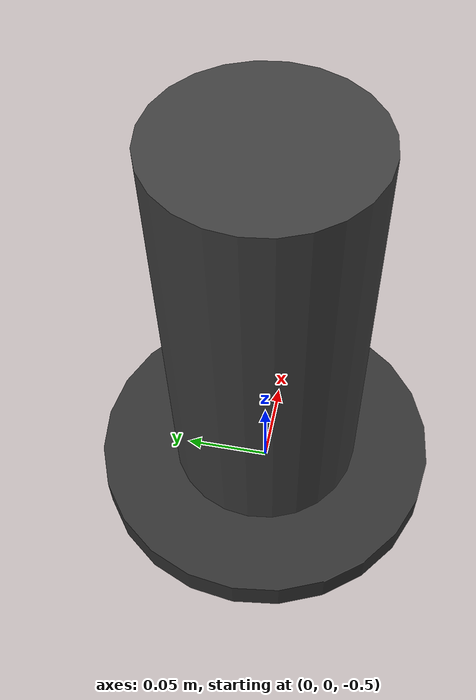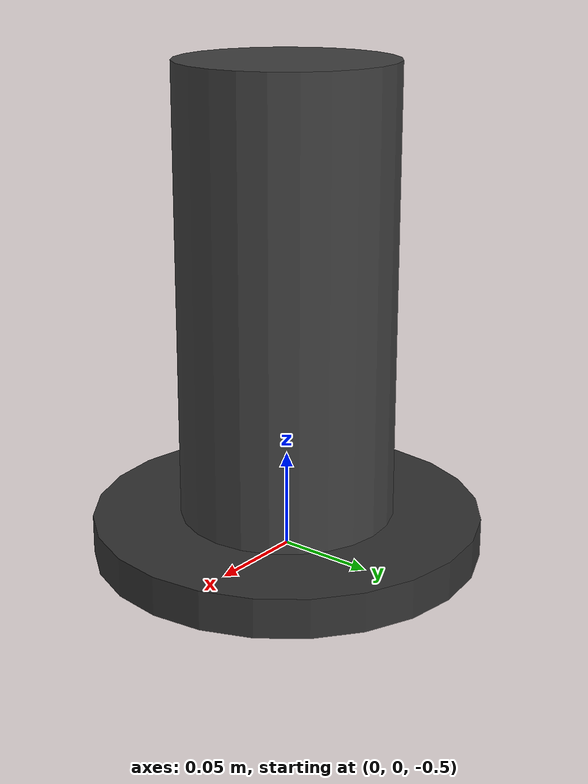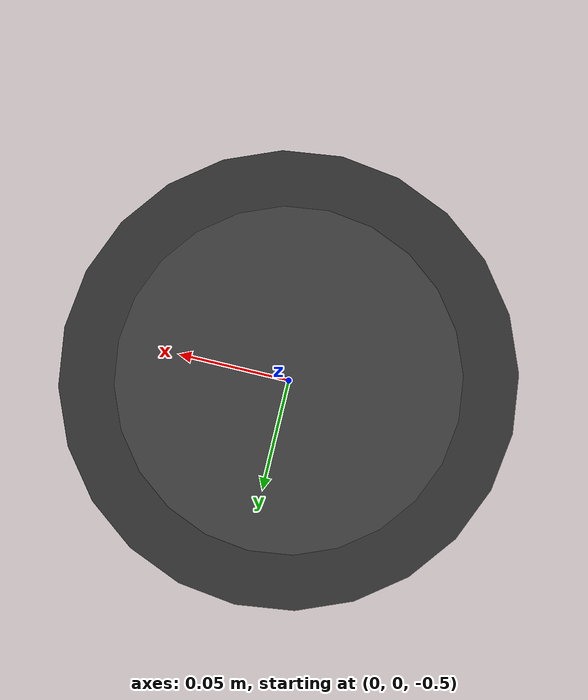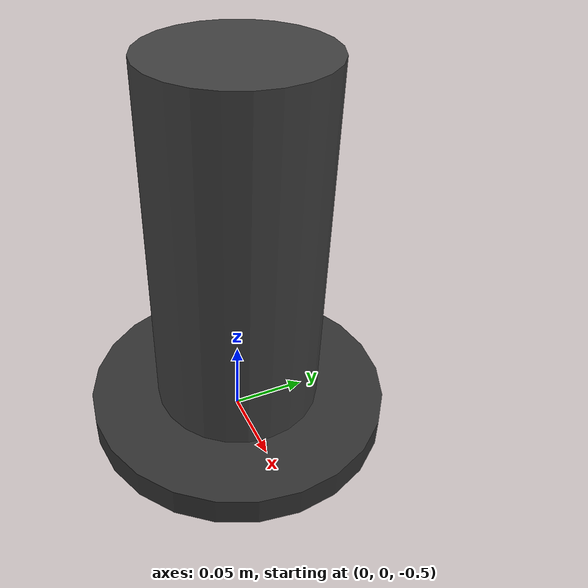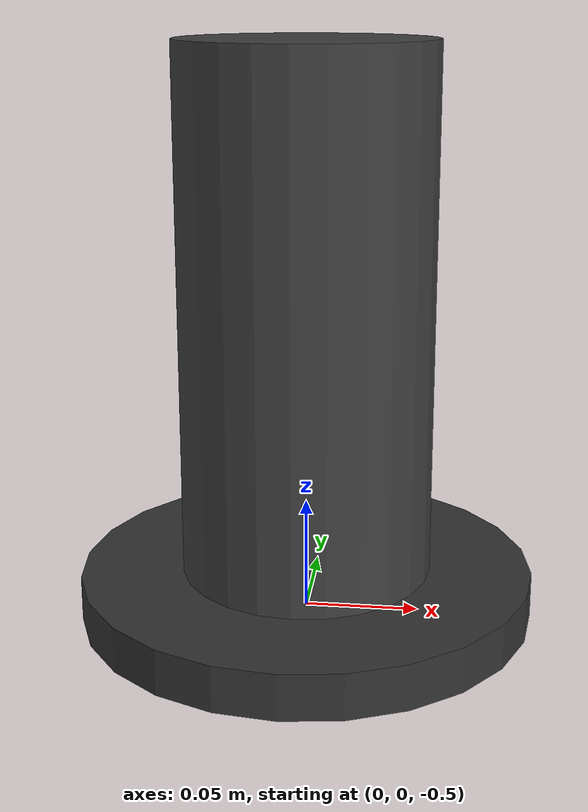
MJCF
<mujoco model="piper_pedestal">
  <!-- Piper 落地立柱台架: 25cm 高, 把臂基座抬到 z=0.25 (世界系)。
       作用: 桌面(0.80m)相对臂基座 z=0.55 —— 该高度带内夹爪开口可压到
       距竖直 20-26° (实测采样), 是 Piper 短臂+腕限位(±70°)下唯一
       能稳定竖直抓桌面方块的安装方式 (臂在方块上方俯身抓下)。 -->
  <worldbody>
    <body name="base" pos="0 0 -0.25">
      <inertial pos="0 0 -0.125" mass="5.0" diaginertia="0.01 0.01 0.001"/>
      <geom name="pedestal_col" type="cylinder" pos="0 0 -0.125" size="0.055 0.125" rgba="0.25 0.25 0.25 1"/>
      <geom name="pedestal_foot" type="cylinder" pos="0 0 -0.24" size="0.10 0.01" rgba="0.2 0.2 0.2 1"/>
    </body>
  </worldbody>
</mujoco>
